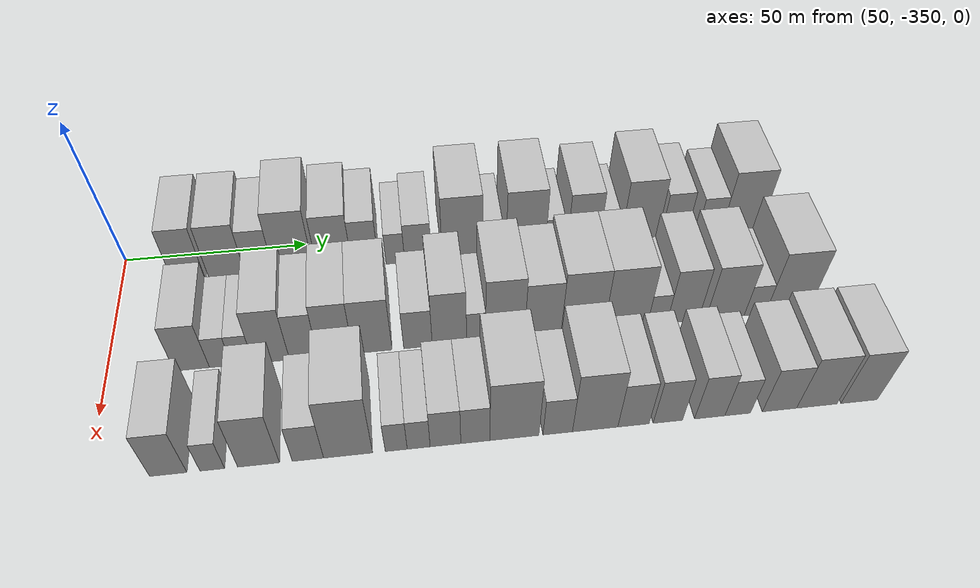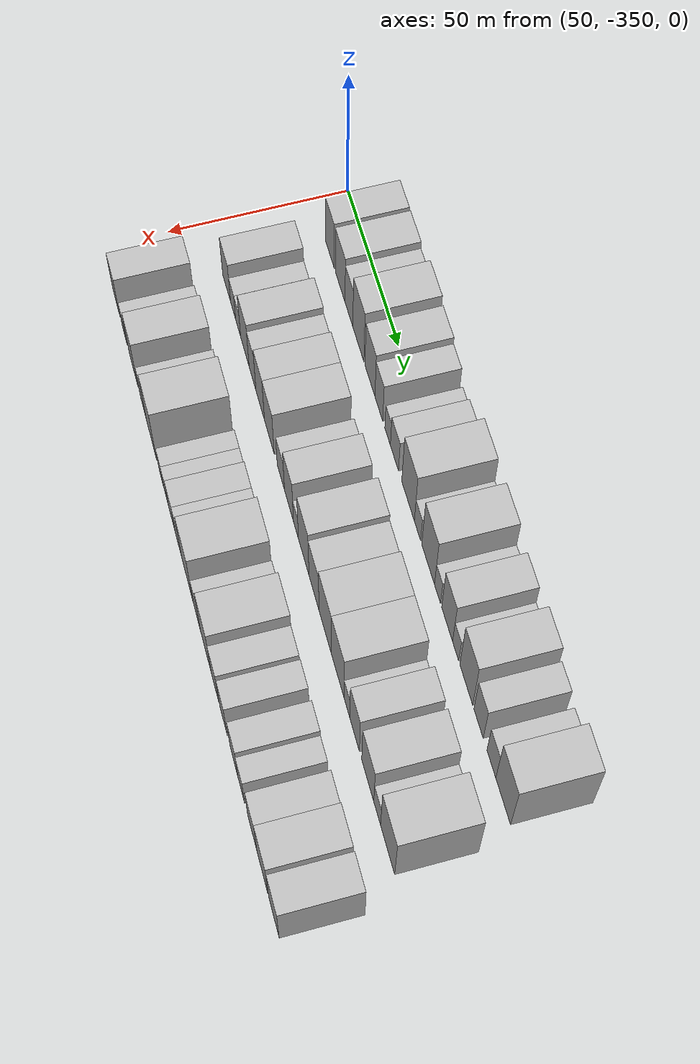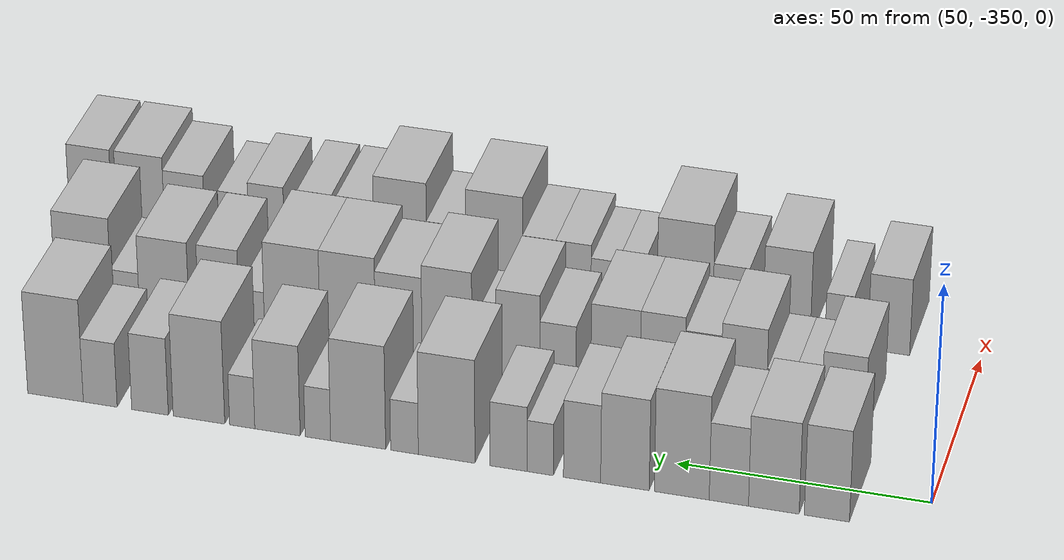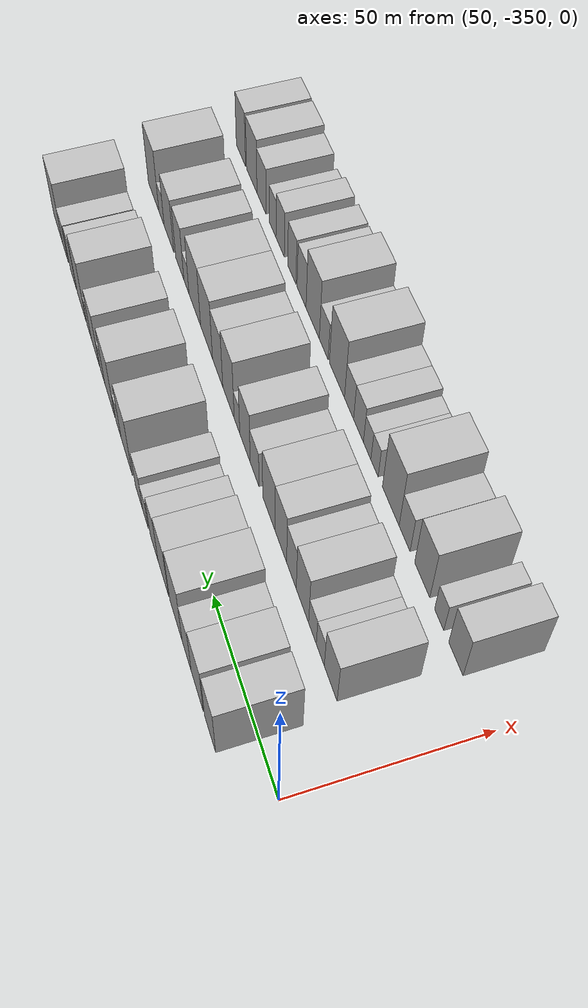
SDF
<sdf version="1.6">
 <world name="default">
  <model name="building_1">
   <static>1</static>
   <pose>50.0000 -331.6233 0 0.000000 0.000000 0.000000</pose>
   <link name="link">
    <pose>0 0 10.50 0 0 0</pose>
    <collision name="collision"><geometry><box><size>20.0000 8.7534 21.0000</size></box></geometry></collision>
    <visual name="visual">
     <cast_shadows>0</cast_shadows>
     <geometry><box><size>20.0000 8.7534 21.0000</size></box></geometry>
     <material>
      <script>
       <uri>model://HANNAS_wall/materials/scripts</uri>
       <uri>model://HANNAS_wall/materials/textures</uri>
       <name>vrc/HANNAS_wall</name>
      </script>
     </material>
    </visual>
   </link>
  </model>
  <model name="building_2">
   <static>1</static>
   <pose>50.0000 -321.3111 0 0.000000 0.000000 0.000000</pose>
   <link name="link">
    <pose>0 0 10.50 0 0 0</pose>
    <collision name="collision"><geometry><box><size>20.0000 9.8710 21.0000</size></box></geometry></collision>
    <visual name="visual">
     <cast_shadows>0</cast_shadows>
     <geometry><box><size>20.0000 9.8710 21.0000</size></box></geometry>
     <material>
      <script>
       <uri>model://HANNAS_wall/materials/scripts</uri>
       <uri>model://HANNAS_wall/materials/textures</uri>
       <name>vrc/HANNAS_wall</name>
      </script>
     </material>
    </visual>
   </link>
  </model>
  <model name="building_3">
   <static>1</static>
   <pose>50.0000 -312.5287 0 0.000000 0.000000 0.000000</pose>
   <link name="link">
    <pose>0 0 9.00 0 0 0</pose>
    <collision name="collision"><geometry><box><size>20.0000 7.6939 18.0000</size></box></geometry></collision>
    <visual name="visual">
     <cast_shadows>0</cast_shadows>
     <geometry><box><size>20.0000 7.6939 18.0000</size></box></geometry>
     <material>
      <script>
       <uri>model://HANNAS_wall/materials/scripts</uri>
       <uri>model://HANNAS_wall/materials/textures</uri>
       <name>vrc/HANNAS_wall</name>
      </script>
     </material>
    </visual>
   </link>
  </model>
  <model name="building_4">
   <static>1</static>
   <pose>50.0000 -303.2883 0 0.000000 0.000000 0.000000</pose>
   <link name="link">
    <pose>0 0 12.00 0 0 0</pose>
    <collision name="collision"><geometry><box><size>20.0000 10.7868 24.0000</size></box></geometry></collision>
    <visual name="visual">
     <cast_shadows>0</cast_shadows>
     <geometry><box><size>20.0000 10.7868 24.0000</size></box></geometry>
     <material>
      <script>
       <uri>model://HANNAS_wall/materials/scripts</uri>
       <uri>model://HANNAS_wall/materials/textures</uri>
       <name>vrc/HANNAS_wall</name>
      </script>
     </material>
    </visual>
   </link>
  </model>
  <model name="building_5">
   <static>1</static>
   <pose>50.0000 -292.0985 0 0.000000 0.000000 0.000000</pose>
   <link name="link">
    <pose>0 0 10.50 0 0 0</pose>
    <collision name="collision"><geometry><box><size>20.0000 9.5930 21.0000</size></box></geometry></collision>
    <visual name="visual">
     <cast_shadows>0</cast_shadows>
     <geometry><box><size>20.0000 9.5930 21.0000</size></box></geometry>
     <material>
      <script>
       <uri>model://HANNAS_wall/materials/scripts</uri>
       <uri>model://HANNAS_wall/materials/textures</uri>
       <name>vrc/HANNAS_wall</name>
      </script>
     </material>
    </visual>
   </link>
  </model>
  <model name="building_6">
   <static>1</static>
   <pose>50.0000 -283.6206 0 0.000000 0.000000 0.000000</pose>
   <link name="link">
    <pose>0 0 9.00 0 0 0</pose>
    <collision name="collision"><geometry><box><size>20.0000 7.3626 18.0000</size></box></geometry></collision>
    <visual name="visual">
     <cast_shadows>0</cast_shadows>
     <geometry><box><size>20.0000 7.3626 18.0000</size></box></geometry>
     <material>
      <script>
       <uri>model://HANNAS_wall/materials/scripts</uri>
       <uri>model://HANNAS_wall/materials/textures</uri>
       <name>vrc/HANNAS_wall</name>
      </script>
     </material>
    </visual>
   </link>
  </model>
  <model name="building_7">
   <static>1</static>
   <pose>50.0000 -275.3418 0 0.000000 0.000000 0.000000</pose>
   <link name="link">
    <pose>0 0 6.00 0 0 0</pose>
    <collision name="collision"><geometry><box><size>20.0000 5.1951 12.0000</size></box></geometry></collision>
    <visual name="visual">
     <cast_shadows>0</cast_shadows>
     <geometry><box><size>20.0000 5.1951 12.0000</size></box></geometry>
     <material>
      <script>
       <uri>model://HANNAS_wall/materials/scripts</uri>
       <uri>model://HANNAS_wall/materials/textures</uri>
       <name>vrc/HANNAS_wall</name>
      </script>
     </material>
    </visual>
   </link>
  </model>
  <model name="building_8">
   <static>1</static>
   <pose>50.0000 -269.0176 0 0.000000 0.000000 0.000000</pose>
   <link name="link">
    <pose>0 0 7.50 0 0 0</pose>
    <collision name="collision"><geometry><box><size>20.0000 7.4532 15.0000</size></box></geometry></collision>
    <visual name="visual">
     <cast_shadows>0</cast_shadows>
     <geometry><box><size>20.0000 7.4532 15.0000</size></box></geometry>
     <material>
      <script>
       <uri>model://HANNAS_wall/materials/scripts</uri>
       <uri>model://HANNAS_wall/materials/textures</uri>
       <name>vrc/HANNAS_wall</name>
      </script>
     </material>
    </visual>
   </link>
  </model>
  <model name="building_9">
   <static>1</static>
   <pose>50.0000 -256.6144 0 0.000000 0.000000 0.000000</pose>
   <link name="link">
    <pose>0 0 12.00 0 0 0</pose>
    <collision name="collision"><geometry><box><size>20.0000 11.3533 24.0000</size></box></geometry></collision>
    <visual name="visual">
     <cast_shadows>0</cast_shadows>
     <geometry><box><size>20.0000 11.3533 24.0000</size></box></geometry>
     <material>
      <script>
       <uri>model://HANNAS_wall/materials/scripts</uri>
       <uri>model://HANNAS_wall/materials/textures</uri>
       <name>vrc/HANNAS_wall</name>
      </script>
     </material>
    </visual>
   </link>
  </model>
  <model name="building_10">
   <static>1</static>
   <pose>50.0000 -248.1485 0 0.000000 0.000000 0.000000</pose>
   <link name="link">
    <pose>0 0 6.00 0 0 0</pose>
    <collision name="collision"><geometry><box><size>20.0000 5.5785 12.0000</size></box></geometry></collision>
    <visual name="visual">
     <cast_shadows>0</cast_shadows>
     <geometry><box><size>20.0000 5.5785 12.0000</size></box></geometry>
     <material>
      <script>
       <uri>model://HANNAS_wall/materials/scripts</uri>
       <uri>model://HANNAS_wall/materials/textures</uri>
       <name>vrc/HANNAS_wall</name>
      </script>
     </material>
    </visual>
   </link>
  </model>
  <model name="building_11">
   <static>1</static>
   <pose>50.0000 -238.7965 0 0.000000 0.000000 0.000000</pose>
   <link name="link">
    <pose>0 0 12.00 0 0 0</pose>
    <collision name="collision"><geometry><box><size>20.0000 11.1255 24.0000</size></box></geometry></collision>
    <visual name="visual">
     <cast_shadows>0</cast_shadows>
     <geometry><box><size>20.0000 11.1255 24.0000</size></box></geometry>
     <material>
      <script>
       <uri>model://HANNAS_wall/materials/scripts</uri>
       <uri>model://HANNAS_wall/materials/textures</uri>
       <name>vrc/HANNAS_wall</name>
      </script>
     </material>
    </visual>
   </link>
  </model>
  <model name="building_12">
   <static>1</static>
   <pose>50.0000 -230.6441 0 0.000000 0.000000 0.000000</pose>
   <link name="link">
    <pose>0 0 6.00 0 0 0</pose>
    <collision name="collision"><geometry><box><size>20.0000 5.1793 12.0000</size></box></geometry></collision>
    <visual name="visual">
     <cast_shadows>0</cast_shadows>
     <geometry><box><size>20.0000 5.1793 12.0000</size></box></geometry>
     <material>
      <script>
       <uri>model://HANNAS_wall/materials/scripts</uri>
       <uri>model://HANNAS_wall/materials/textures</uri>
       <name>vrc/HANNAS_wall</name>
      </script>
     </material>
    </visual>
   </link>
  </model>
  <model name="building_13">
   <static>1</static>
   <pose>50.0000 -222.4367 0 0.000000 0.000000 0.000000</pose>
   <link name="link">
    <pose>0 0 10.50 0 0 0</pose>
    <collision name="collision"><geometry><box><size>20.0000 9.2356 21.0000</size></box></geometry></collision>
    <visual name="visual">
     <cast_shadows>0</cast_shadows>
     <geometry><box><size>20.0000 9.2356 21.0000</size></box></geometry>
     <material>
      <script>
       <uri>model://HANNAS_wall/materials/scripts</uri>
       <uri>model://HANNAS_wall/materials/textures</uri>
       <name>vrc/HANNAS_wall</name>
      </script>
     </material>
    </visual>
   </link>
  </model>
  <model name="building_14">
   <static>1</static>
   <pose>50.0000 -215.2463 0 0.000000 0.000000 0.000000</pose>
   <link name="link">
    <pose>0 0 6.00 0 0 0</pose>
    <collision name="collision"><geometry><box><size>20.0000 5.1452 12.0000</size></box></geometry></collision>
    <visual name="visual">
     <cast_shadows>0</cast_shadows>
     <geometry><box><size>20.0000 5.1452 12.0000</size></box></geometry>
     <material>
      <script>
       <uri>model://HANNAS_wall/materials/scripts</uri>
       <uri>model://HANNAS_wall/materials/textures</uri>
       <name>vrc/HANNAS_wall</name>
      </script>
     </material>
    </visual>
   </link>
  </model>
  <model name="building_15">
   <static>1</static>
   <pose>50.0000 -206.3878 0 0.000000 0.000000 0.000000</pose>
   <link name="link">
    <pose>0 0 12.00 0 0 0</pose>
    <collision name="collision"><geometry><box><size>20.0000 10.5718 24.0000</size></box></geometry></collision>
    <visual name="visual">
     <cast_shadows>0</cast_shadows>
     <geometry><box><size>20.0000 10.5718 24.0000</size></box></geometry>
     <material>
      <script>
       <uri>model://HANNAS_wall/materials/scripts</uri>
       <uri>model://HANNAS_wall/materials/textures</uri>
       <name>vrc/HANNAS_wall</name>
      </script>
     </material>
    </visual>
   </link>
  </model>
  <model name="building_16">
   <static>1</static>
   <pose>50.0000 -196.3300 0 0.000000 0.000000 0.000000</pose>
   <link name="link">
    <pose>0 0 9.00 0 0 0</pose>
    <collision name="collision"><geometry><box><size>20.0000 7.5437 18.0000</size></box></geometry></collision>
    <visual name="visual">
     <cast_shadows>0</cast_shadows>
     <geometry><box><size>20.0000 7.5437 18.0000</size></box></geometry>
     <material>
      <script>
       <uri>model://HANNAS_wall/materials/scripts</uri>
       <uri>model://HANNAS_wall/materials/textures</uri>
       <name>vrc/HANNAS_wall</name>
      </script>
     </material>
    </visual>
   </link>
  </model>
  <model name="building_17">
   <static>1</static>
   <pose>50.0000 -186.0587 0 0.000000 0.000000 0.000000</pose>
   <link name="link">
    <pose>0 0 7.50 0 0 0</pose>
    <collision name="collision"><geometry><box><size>20.0000 6.9990 15.0000</size></box></geometry></collision>
    <visual name="visual">
     <cast_shadows>0</cast_shadows>
     <geometry><box><size>20.0000 6.9990 15.0000</size></box></geometry>
     <material>
      <script>
       <uri>model://HANNAS_wall/materials/scripts</uri>
       <uri>model://HANNAS_wall/materials/textures</uri>
       <name>vrc/HANNAS_wall</name>
      </script>
     </material>
    </visual>
   </link>
  </model>
  <model name="building_18">
   <static>1</static>
   <pose>50.0000 -176.7845 0 0.000000 0.000000 0.000000</pose>
   <link name="link">
    <pose>0 0 12.00 0 0 0</pose>
    <collision name="collision"><geometry><box><size>20.0000 11.5493 24.0000</size></box></geometry></collision>
    <visual name="visual">
     <cast_shadows>0</cast_shadows>
     <geometry><box><size>20.0000 11.5493 24.0000</size></box></geometry>
     <material>
      <script>
       <uri>model://HANNAS_wall/materials/scripts</uri>
       <uri>model://HANNAS_wall/materials/textures</uri>
       <name>vrc/HANNAS_wall</name>
      </script>
     </material>
    </visual>
   </link>
  </model>
  <model name="building_77">
   <static>1</static>
   <pose>79.0000 -328.6276 0 0.000000 0.000000 0.000000</pose>
   <link name="link">
    <pose>0 0 9.00 0 0 0</pose>
    <collision name="collision"><geometry><box><size>20.0000 8.7448 18.0000</size></box></geometry></collision>
    <visual name="visual">
     <cast_shadows>0</cast_shadows>
     <geometry><box><size>20.0000 8.7448 18.0000</size></box></geometry>
     <material>
      <script>
       <uri>model://HANNAS_wall/materials/scripts</uri>
       <uri>model://HANNAS_wall/materials/textures</uri>
       <name>vrc/HANNAS_wall</name>
      </script>
     </material>
    </visual>
   </link>
  </model>
  <model name="building_78">
   <static>1</static>
   <pose>79.0000 -321.4708 0 0.000000 0.000000 0.000000</pose>
   <link name="link">
    <pose>0 0 6.00 0 0 0</pose>
    <collision name="collision"><geometry><box><size>20.0000 5.5687 12.0000</size></box></geometry></collision>
    <visual name="visual">
     <cast_shadows>0</cast_shadows>
     <geometry><box><size>20.0000 5.5687 12.0000</size></box></geometry>
     <material>
      <script>
       <uri>model://HANNAS_wall/materials/scripts</uri>
       <uri>model://HANNAS_wall/materials/textures</uri>
       <name>vrc/HANNAS_wall</name>
      </script>
     </material>
    </visual>
   </link>
  </model>
  <model name="building_79">
   <static>1</static>
   <pose>79.0000 -315.9514 0 0.000000 0.000000 0.000000</pose>
   <link name="link">
    <pose>0 0 6.00 0 0 0</pose>
    <collision name="collision"><geometry><box><size>20.0000 5.4701 12.0000</size></box></geometry></collision>
    <visual name="visual">
     <cast_shadows>0</cast_shadows>
     <geometry><box><size>20.0000 5.4701 12.0000</size></box></geometry>
     <material>
      <script>
       <uri>model://HANNAS_wall/materials/scripts</uri>
       <uri>model://HANNAS_wall/materials/textures</uri>
       <name>vrc/HANNAS_wall</name>
      </script>
     </material>
    </visual>
   </link>
  </model>
  <model name="building_80">
   <static>1</static>
   <pose>79.0000 -308.6572 0 0.000000 0.000000 0.000000</pose>
   <link name="link">
    <pose>0 0 10.50 0 0 0</pose>
    <collision name="collision"><geometry><box><size>20.0000 9.1183 21.0000</size></box></geometry></collision>
    <visual name="visual">
     <cast_shadows>0</cast_shadows>
     <geometry><box><size>20.0000 9.1183 21.0000</size></box></geometry>
     <material>
      <script>
       <uri>model://HANNAS_wall/materials/scripts</uri>
       <uri>model://HANNAS_wall/materials/textures</uri>
       <name>vrc/HANNAS_wall</name>
      </script>
     </material>
    </visual>
   </link>
  </model>
  <model name="building_81">
   <static>1</static>
   <pose>79.0000 -300.4725 0 0.000000 0.000000 0.000000</pose>
   <link name="link">
    <pose>0 0 9.00 0 0 0</pose>
    <collision name="collision"><geometry><box><size>20.0000 7.2511 18.0000</size></box></geometry></collision>
    <visual name="visual">
     <cast_shadows>0</cast_shadows>
     <geometry><box><size>20.0000 7.2511 18.0000</size></box></geometry>
     <material>
      <script>
       <uri>model://HANNAS_wall/materials/scripts</uri>
       <uri>model://HANNAS_wall/materials/textures</uri>
       <name>vrc/HANNAS_wall</name>
      </script>
     </material>
    </visual>
   </link>
  </model>
  <model name="building_82">
   <static>1</static>
   <pose>79.0000 -292.3743 0 0.000000 0.000000 0.000000</pose>
   <link name="link">
    <pose>0 0 10.50 0 0 0</pose>
    <collision name="collision"><geometry><box><size>20.0000 8.9451 21.0000</size></box></geometry></collision>
    <visual name="visual">
     <cast_shadows>0</cast_shadows>
     <geometry><box><size>20.0000 8.9451 21.0000</size></box></geometry>
     <material>
      <script>
       <uri>model://HANNAS_wall/materials/scripts</uri>
       <uri>model://HANNAS_wall/materials/textures</uri>
       <name>vrc/HANNAS_wall</name>
      </script>
     </material>
    </visual>
   </link>
  </model>
  <model name="building_83">
   <static>1</static>
   <pose>79.0000 -282.9113 0 0.000000 0.000000 0.000000</pose>
   <link name="link">
    <pose>0 0 10.50 0 0 0</pose>
    <collision name="collision"><geometry><box><size>20.0000 9.9810 21.0000</size></box></geometry></collision>
    <visual name="visual">
     <cast_shadows>0</cast_shadows>
     <geometry><box><size>20.0000 9.9810 21.0000</size></box></geometry>
     <material>
      <script>
       <uri>model://HANNAS_wall/materials/scripts</uri>
       <uri>model://HANNAS_wall/materials/textures</uri>
       <name>vrc/HANNAS_wall</name>
      </script>
     </material>
    </visual>
   </link>
  </model>
  <model name="building_84">
   <static>1</static>
   <pose>79.0000 -271.2263 0 0.000000 0.000000 0.000000</pose>
   <link name="link">
    <pose>0 0 7.50 0 0 0</pose>
    <collision name="collision"><geometry><box><size>20.0000 7.3889 15.0000</size></box></geometry></collision>
    <visual name="visual">
     <cast_shadows>0</cast_shadows>
     <geometry><box><size>20.0000 7.3889 15.0000</size></box></geometry>
     <material>
      <script>
       <uri>model://HANNAS_wall/materials/scripts</uri>
       <uri>model://HANNAS_wall/materials/textures</uri>
       <name>vrc/HANNAS_wall</name>
      </script>
     </material>
    </visual>
   </link>
  </model>
  <model name="building_85">
   <static>1</static>
   <pose>79.0000 -263.0699 0 0.000000 0.000000 0.000000</pose>
   <link name="link">
    <pose>0 0 10.50 0 0 0</pose>
    <collision name="collision"><geometry><box><size>20.0000 8.9239 21.0000</size></box></geometry></collision>
    <visual name="visual">
     <cast_shadows>0</cast_shadows>
     <geometry><box><size>20.0000 8.9239 21.0000</size></box></geometry>
     <material>
      <script>
       <uri>model://HANNAS_wall/materials/scripts</uri>
       <uri>model://HANNAS_wall/materials/textures</uri>
       <name>vrc/HANNAS_wall</name>
      </script>
     </material>
    </visual>
   </link>
  </model>
  <model name="building_86">
   <static>1</static>
   <pose>79.0000 -256.1489 0 0.000000 0.000000 0.000000</pose>
   <link name="link">
    <pose>0 0 6.00 0 0 0</pose>
    <collision name="collision"><geometry><box><size>20.0000 4.9183 12.0000</size></box></geometry></collision>
    <visual name="visual">
     <cast_shadows>0</cast_shadows>
     <geometry><box><size>20.0000 4.9183 12.0000</size></box></geometry>
     <material>
      <script>
       <uri>model://HANNAS_wall/materials/scripts</uri>
       <uri>model://HANNAS_wall/materials/textures</uri>
       <name>vrc/HANNAS_wall</name>
      </script>
     </material>
    </visual>
   </link>
  </model>
  <model name="building_87">
   <static>1</static>
   <pose>79.0000 -248.5643 0 0.000000 0.000000 0.000000</pose>
   <link name="link">
    <pose>0 0 12.00 0 0 0</pose>
    <collision name="collision"><geometry><box><size>20.0000 10.2509 24.0000</size></box></geometry></collision>
    <visual name="visual">
     <cast_shadows>0</cast_shadows>
     <geometry><box><size>20.0000 10.2509 24.0000</size></box></geometry>
     <material>
      <script>
       <uri>model://HANNAS_wall/materials/scripts</uri>
       <uri>model://HANNAS_wall/materials/textures</uri>
       <name>vrc/HANNAS_wall</name>
      </script>
     </material>
    </visual>
   </link>
  </model>
  <model name="building_88">
   <static>1</static>
   <pose>79.0000 -238.6514 0 0.000000 0.000000 0.000000</pose>
   <link name="link">
    <pose>0 0 10.50 0 0 0</pose>
    <collision name="collision"><geometry><box><size>20.0000 9.5749 21.0000</size></box></geometry></collision>
    <visual name="visual">
     <cast_shadows>0</cast_shadows>
     <geometry><box><size>20.0000 9.5749 21.0000</size></box></geometry>
     <material>
      <script>
       <uri>model://HANNAS_wall/materials/scripts</uri>
       <uri>model://HANNAS_wall/materials/textures</uri>
       <name>vrc/HANNAS_wall</name>
      </script>
     </material>
    </visual>
   </link>
  </model>
  <model name="building_89">
   <static>1</static>
   <pose>79.0000 -228.1300 0 0.000000 0.000000 0.000000</pose>
   <link name="link">
    <pose>0 0 12.00 0 0 0</pose>
    <collision name="collision"><geometry><box><size>20.0000 11.4679 24.0000</size></box></geometry></collision>
    <visual name="visual">
     <cast_shadows>0</cast_shadows>
     <geometry><box><size>20.0000 11.4679 24.0000</size></box></geometry>
     <material>
      <script>
       <uri>model://HANNAS_wall/materials/scripts</uri>
       <uri>model://HANNAS_wall/materials/textures</uri>
       <name>vrc/HANNAS_wall</name>
      </script>
     </material>
    </visual>
   </link>
  </model>
  <model name="building_90">
   <static>1</static>
   <pose>79.0000 -216.6030 0 0.000000 0.000000 0.000000</pose>
   <link name="link">
    <pose>0 0 12.00 0 0 0</pose>
    <collision name="collision"><geometry><box><size>20.0000 11.5860 24.0000</size></box></geometry></collision>
    <visual name="visual">
     <cast_shadows>0</cast_shadows>
     <geometry><box><size>20.0000 11.5860 24.0000</size></box></geometry>
     <material>
      <script>
       <uri>model://HANNAS_wall/materials/scripts</uri>
       <uri>model://HANNAS_wall/materials/textures</uri>
       <name>vrc/HANNAS_wall</name>
      </script>
     </material>
    </visual>
   </link>
  </model>
  <model name="building_91">
   <static>1</static>
   <pose>79.0000 -208.1799 0 0.000000 0.000000 0.000000</pose>
   <link name="link">
    <pose>0 0 6.00 0 0 0</pose>
    <collision name="collision"><geometry><box><size>20.0000 5.2603 12.0000</size></box></geometry></collision>
    <visual name="visual">
     <cast_shadows>0</cast_shadows>
     <geometry><box><size>20.0000 5.2603 12.0000</size></box></geometry>
     <material>
      <script>
       <uri>model://HANNAS_wall/materials/scripts</uri>
       <uri>model://HANNAS_wall/materials/textures</uri>
       <name>vrc/HANNAS_wall</name>
      </script>
     </material>
    </visual>
   </link>
  </model>
  <model name="building_92">
   <static>1</static>
   <pose>79.0000 -201.2891 0 0.000000 0.000000 0.000000</pose>
   <link name="link">
    <pose>0 0 10.50 0 0 0</pose>
    <collision name="collision"><geometry><box><size>20.0000 8.5214 21.0000</size></box></geometry></collision>
    <visual name="visual">
     <cast_shadows>0</cast_shadows>
     <geometry><box><size>20.0000 8.5214 21.0000</size></box></geometry>
     <material>
      <script>
       <uri>model://HANNAS_wall/materials/scripts</uri>
       <uri>model://HANNAS_wall/materials/textures</uri>
       <name>vrc/HANNAS_wall</name>
      </script>
     </material>
    </visual>
   </link>
  </model>
  <model name="building_93">
   <static>1</static>
   <pose>79.0000 -189.7896 0 0.000000 0.000000 0.000000</pose>
   <link name="link">
    <pose>0 0 10.50 0 0 0</pose>
    <collision name="collision"><geometry><box><size>20.0000 10.4776 21.0000</size></box></geometry></collision>
    <visual name="visual">
     <cast_shadows>0</cast_shadows>
     <geometry><box><size>20.0000 10.4776 21.0000</size></box></geometry>
     <material>
      <script>
       <uri>model://HANNAS_wall/materials/scripts</uri>
       <uri>model://HANNAS_wall/materials/textures</uri>
       <name>vrc/HANNAS_wall</name>
      </script>
     </material>
    </visual>
   </link>
  </model>
  <model name="building_94">
   <static>1</static>
   <pose>79.0000 -181.6421 0 0.000000 0.000000 0.000000</pose>
   <link name="link">
    <pose>0 0 6.00 0 0 0</pose>
    <collision name="collision"><geometry><box><size>20.0000 5.8174 12.0000</size></box></geometry></collision>
    <visual name="visual">
     <cast_shadows>0</cast_shadows>
     <geometry><box><size>20.0000 5.8174 12.0000</size></box></geometry>
     <material>
      <script>
       <uri>model://HANNAS_wall/materials/scripts</uri>
       <uri>model://HANNAS_wall/materials/textures</uri>
       <name>vrc/HANNAS_wall</name>
      </script>
     </material>
    </visual>
   </link>
  </model>
  <model name="building_95">
   <static>1</static>
   <pose>79.0000 -172.7633 0 0.000000 0.000000 0.000000</pose>
   <link name="link">
    <pose>0 0 12.00 0 0 0</pose>
    <collision name="collision"><geometry><box><size>20.0000 11.9402 24.0000</size></box></geometry></collision>
    <visual name="visual">
     <cast_shadows>0</cast_shadows>
     <geometry><box><size>20.0000 11.9402 24.0000</size></box></geometry>
     <material>
      <script>
       <uri>model://HANNAS_wall/materials/scripts</uri>
       <uri>model://HANNAS_wall/materials/textures</uri>
       <name>vrc/HANNAS_wall</name>
      </script>
     </material>
    </visual>
   </link>
  </model>
  <model name="building_146">
   <static>1</static>
   <pose>108.0000 -331.7345 0 0.000000 0.000000 0.000000</pose>
   <link name="link">
    <pose>0 0 9.00 0 0 0</pose>
    <collision name="collision"><geometry><box><size>20.0000 8.5309 18.0000</size></box></geometry></collision>
    <visual name="visual">
     <cast_shadows>0</cast_shadows>
     <geometry><box><size>20.0000 8.5309 18.0000</size></box></geometry>
     <material>
      <script>
       <uri>model://HANNAS_wall/materials/scripts</uri>
       <uri>model://HANNAS_wall/materials/textures</uri>
       <name>vrc/HANNAS_wall</name>
      </script>
     </material>
    </visual>
   </link>
  </model>
  <model name="building_147">
   <static>1</static>
   <pose>108.0000 -321.6245 0 0.000000 0.000000 0.000000</pose>
   <link name="link">
    <pose>0 0 6.00 0 0 0</pose>
    <collision name="collision"><geometry><box><size>20.0000 5.6891 12.0000</size></box></geometry></collision>
    <visual name="visual">
     <cast_shadows>0</cast_shadows>
     <geometry><box><size>20.0000 5.6891 12.0000</size></box></geometry>
     <material>
      <script>
       <uri>model://HANNAS_wall/materials/scripts</uri>
       <uri>model://HANNAS_wall/materials/textures</uri>
       <name>vrc/HANNAS_wall</name>
      </script>
     </material>
    </visual>
   </link>
  </model>
  <model name="building_148">
   <static>1</static>
   <pose>108.0000 -310.9248 0 0.000000 0.000000 0.000000</pose>
   <link name="link">
    <pose>0 0 10.50 0 0 0</pose>
    <collision name="collision"><geometry><box><size>20.0000 9.7104 21.0000</size></box></geometry></collision>
    <visual name="visual">
     <cast_shadows>0</cast_shadows>
     <geometry><box><size>20.0000 9.7104 21.0000</size></box></geometry>
     <material>
      <script>
       <uri>model://HANNAS_wall/materials/scripts</uri>
       <uri>model://HANNAS_wall/materials/textures</uri>
       <name>vrc/HANNAS_wall</name>
      </script>
     </material>
    </visual>
   </link>
  </model>
  <model name="building_149">
   <static>1</static>
   <pose>108.0000 -299.4082 0 0.000000 0.000000 0.000000</pose>
   <link name="link">
    <pose>0 0 7.50 0 0 0</pose>
    <collision name="collision"><geometry><box><size>20.0000 7.3228 15.0000</size></box></geometry></collision>
    <visual name="visual">
     <cast_shadows>0</cast_shadows>
     <geometry><box><size>20.0000 7.3228 15.0000</size></box></geometry>
     <material>
      <script>
       <uri>model://HANNAS_wall/materials/scripts</uri>
       <uri>model://HANNAS_wall/materials/textures</uri>
       <name>vrc/HANNAS_wall</name>
      </script>
     </material>
    </visual>
   </link>
  </model>
  <model name="building_150">
   <static>1</static>
   <pose>108.0000 -289.9781 0 0.000000 0.000000 0.000000</pose>
   <link name="link">
    <pose>0 0 12.00 0 0 0</pose>
    <collision name="collision"><geometry><box><size>20.0000 11.5374 24.0000</size></box></geometry></collision>
    <visual name="visual">
     <cast_shadows>0</cast_shadows>
     <geometry><box><size>20.0000 11.5374 24.0000</size></box></geometry>
     <material>
      <script>
       <uri>model://HANNAS_wall/materials/scripts</uri>
       <uri>model://HANNAS_wall/materials/textures</uri>
       <name>vrc/HANNAS_wall</name>
      </script>
     </material>
    </visual>
   </link>
  </model>
  <model name="building_151">
   <static>1</static>
   <pose>108.0000 -278.5998 0 0.000000 0.000000 0.000000</pose>
   <link name="link">
    <pose>0 0 6.00 0 0 0</pose>
    <collision name="collision"><geometry><box><size>20.0000 5.2192 12.0000</size></box></geometry></collision>
    <visual name="visual">
     <cast_shadows>0</cast_shadows>
     <geometry><box><size>20.0000 5.2192 12.0000</size></box></geometry>
     <material>
      <script>
       <uri>model://HANNAS_wall/materials/scripts</uri>
       <uri>model://HANNAS_wall/materials/textures</uri>
       <name>vrc/HANNAS_wall</name>
      </script>
     </material>
    </visual>
   </link>
  </model>
  <model name="building_152">
   <static>1</static>
   <pose>108.0000 -273.2622 0 0.000000 0.000000 0.000000</pose>
   <link name="link">
    <pose>0 0 6.00 0 0 0</pose>
    <collision name="collision"><geometry><box><size>20.0000 5.4560 12.0000</size></box></geometry></collision>
    <visual name="visual">
     <cast_shadows>0</cast_shadows>
     <geometry><box><size>20.0000 5.4560 12.0000</size></box></geometry>
     <material>
      <script>
       <uri>model://HANNAS_wall/materials/scripts</uri>
       <uri>model://HANNAS_wall/materials/textures</uri>
       <name>vrc/HANNAS_wall</name>
      </script>
     </material>
    </visual>
   </link>
  </model>
  <model name="building_153">
   <static>1</static>
   <pose>108.0000 -266.8653 0 0.000000 0.000000 0.000000</pose>
   <link name="link">
    <pose>0 0 7.50 0 0 0</pose>
    <collision name="collision"><geometry><box><size>20.0000 7.3379 15.0000</size></box></geometry></collision>
    <visual name="visual">
     <cast_shadows>0</cast_shadows>
     <geometry><box><size>20.0000 7.3379 15.0000</size></box></geometry>
     <material>
      <script>
       <uri>model://HANNAS_wall/materials/scripts</uri>
       <uri>model://HANNAS_wall/materials/textures</uri>
       <name>vrc/HANNAS_wall</name>
      </script>
     </material>
    </visual>
   </link>
  </model>
  <model name="building_154">
   <static>1</static>
   <pose>108.0000 -259.7245 0 0.000000 0.000000 0.000000</pose>
   <link name="link">
    <pose>0 0 7.50 0 0 0</pose>
    <collision name="collision"><geometry><box><size>20.0000 6.9436 15.0000</size></box></geometry></collision>
    <visual name="visual">
     <cast_shadows>0</cast_shadows>
     <geometry><box><size>20.0000 6.9436 15.0000</size></box></geometry>
     <material>
      <script>
       <uri>model://HANNAS_wall/materials/scripts</uri>
       <uri>model://HANNAS_wall/materials/textures</uri>
       <name>vrc/HANNAS_wall</name>
      </script>
     </material>
    </visual>
   </link>
  </model>
  <model name="building_155">
   <static>1</static>
   <pose>108.0000 -250.3054 0 0.000000 0.000000 0.000000</pose>
   <link name="link">
    <pose>0 0 12.00 0 0 0</pose>
    <collision name="collision"><geometry><box><size>20.0000 11.8946 24.0000</size></box></geometry></collision>
    <visual name="visual">
     <cast_shadows>0</cast_shadows>
     <geometry><box><size>20.0000 11.8946 24.0000</size></box></geometry>
     <material>
      <script>
       <uri>model://HANNAS_wall/materials/scripts</uri>
       <uri>model://HANNAS_wall/materials/textures</uri>
       <name>vrc/HANNAS_wall</name>
      </script>
     </material>
    </visual>
   </link>
  </model>
  <model name="building_156">
   <static>1</static>
   <pose>108.0000 -239.7678 0 0.000000 0.000000 0.000000</pose>
   <link name="link">
    <pose>0 0 7.50 0 0 0</pose>
    <collision name="collision"><geometry><box><size>20.0000 7.1805 15.0000</size></box></geometry></collision>
    <visual name="visual">
     <cast_shadows>0</cast_shadows>
     <geometry><box><size>20.0000 7.1805 15.0000</size></box></geometry>
     <material>
      <script>
       <uri>model://HANNAS_wall/materials/scripts</uri>
       <uri>model://HANNAS_wall/materials/textures</uri>
       <name>vrc/HANNAS_wall</name>
      </script>
     </material>
    </visual>
   </link>
  </model>
  <model name="building_157">
   <static>1</static>
   <pose>108.0000 -230.6041 0 0.000000 0.000000 0.000000</pose>
   <link name="link">
    <pose>0 0 12.00 0 0 0</pose>
    <collision name="collision"><geometry><box><size>20.0000 11.1471 24.0000</size></box></geometry></collision>
    <visual name="visual">
     <cast_shadows>0</cast_shadows>
     <geometry><box><size>20.0000 11.1471 24.0000</size></box></geometry>
     <material>
      <script>
       <uri>model://HANNAS_wall/materials/scripts</uri>
       <uri>model://HANNAS_wall/materials/textures</uri>
       <name>vrc/HANNAS_wall</name>
      </script>
     </material>
    </visual>
   </link>
  </model>
  <model name="building_158">
   <static>1</static>
   <pose>108.0000 -221.1626 0 0.000000 0.000000 0.000000</pose>
   <link name="link">
    <pose>0 0 9.00 0 0 0</pose>
    <collision name="collision"><geometry><box><size>20.0000 7.7357 18.0000</size></box></geometry></collision>
    <visual name="visual">
     <cast_shadows>0</cast_shadows>
     <geometry><box><size>20.0000 7.7357 18.0000</size></box></geometry>
     <material>
      <script>
       <uri>model://HANNAS_wall/materials/scripts</uri>
       <uri>model://HANNAS_wall/materials/textures</uri>
       <name>vrc/HANNAS_wall</name>
      </script>
     </material>
    </visual>
   </link>
  </model>
  <model name="building_159">
   <static>1</static>
   <pose>108.0000 -212.6504 0 0.000000 0.000000 0.000000</pose>
   <link name="link">
    <pose>0 0 9.00 0 0 0</pose>
    <collision name="collision"><geometry><box><size>20.0000 7.2889 18.0000</size></box></geometry></collision>
    <visual name="visual">
     <cast_shadows>0</cast_shadows>
     <geometry><box><size>20.0000 7.2889 18.0000</size></box></geometry>
     <material>
      <script>
       <uri>model://HANNAS_wall/materials/scripts</uri>
       <uri>model://HANNAS_wall/materials/textures</uri>
       <name>vrc/HANNAS_wall</name>
      </script>
     </material>
    </visual>
   </link>
  </model>
  <model name="building_160">
   <static>1</static>
   <pose>108.0000 -202.2010 0 0.000000 0.000000 0.000000</pose>
   <link name="link">
    <pose>0 0 9.00 0 0 0</pose>
    <collision name="collision"><geometry><box><size>20.0000 7.6098 18.0000</size></box></geometry></collision>
    <visual name="visual">
     <cast_shadows>0</cast_shadows>
     <geometry><box><size>20.0000 7.6098 18.0000</size></box></geometry>
     <material>
      <script>
       <uri>model://HANNAS_wall/materials/scripts</uri>
       <uri>model://HANNAS_wall/materials/textures</uri>
       <name>vrc/HANNAS_wall</name>
      </script>
     </material>
    </visual>
   </link>
  </model>
  <model name="building_161">
   <static>1</static>
   <pose>108.0000 -195.1843 0 0.000000 0.000000 0.000000</pose>
   <link name="link">
    <pose>0 0 7.50 0 0 0</pose>
    <collision name="collision"><geometry><box><size>20.0000 6.4236 15.0000</size></box></geometry></collision>
    <visual name="visual">
     <cast_shadows>0</cast_shadows>
     <geometry><box><size>20.0000 6.4236 15.0000</size></box></geometry>
     <material>
      <script>
       <uri>model://HANNAS_wall/materials/scripts</uri>
       <uri>model://HANNAS_wall/materials/textures</uri>
       <name>vrc/HANNAS_wall</name>
      </script>
     </material>
    </visual>
   </link>
  </model>
  <model name="building_162">
   <static>1</static>
   <pose>108.0000 -184.6299 0 0.000000 0.000000 0.000000</pose>
   <link name="link">
    <pose>0 0 9.00 0 0 0</pose>
    <collision name="collision"><geometry><box><size>20.0000 8.6853 18.0000</size></box></geometry></collision>
    <visual name="visual">
     <cast_shadows>0</cast_shadows>
     <geometry><box><size>20.0000 8.6853 18.0000</size></box></geometry>
     <material>
      <script>
       <uri>model://HANNAS_wall/materials/scripts</uri>
       <uri>model://HANNAS_wall/materials/textures</uri>
       <name>vrc/HANNAS_wall</name>
      </script>
     </material>
    </visual>
   </link>
  </model>
  <model name="building_163">
   <static>1</static>
   <pose>108.0000 -175.1314 0 0.000000 0.000000 0.000000</pose>
   <link name="link">
    <pose>0 0 10.50 0 0 0</pose>
    <collision name="collision"><geometry><box><size>20.0000 10.3117 21.0000</size></box></geometry></collision>
    <visual name="visual">
     <cast_shadows>0</cast_shadows>
     <geometry><box><size>20.0000 10.3117 21.0000</size></box></geometry>
     <material>
      <script>
       <uri>model://HANNAS_wall/materials/scripts</uri>
       <uri>model://HANNAS_wall/materials/textures</uri>
       <name>vrc/HANNAS_wall</name>
      </script>
     </material>
    </visual>
   </link>
  </model>
  <model name="building_164">
   <static>1</static>
   <pose>108.0000 -164.3181 0 0.000000 0.000000 0.000000</pose>
   <link name="link">
    <pose>0 0 10.50 0 0 0</pose>
    <collision name="collision"><geometry><box><size>20.0000 9.3151 21.0000</size></box></geometry></collision>
    <visual name="visual">
     <cast_shadows>0</cast_shadows>
     <geometry><box><size>20.0000 9.3151 21.0000</size></box></geometry>
     <material>
      <script>
       <uri>model://HANNAS_wall/materials/scripts</uri>
       <uri>model://HANNAS_wall/materials/textures</uri>
       <name>vrc/HANNAS_wall</name>
      </script>
     </material>
    </visual>
   </link>
  </model>
 </world>
</sdf>
